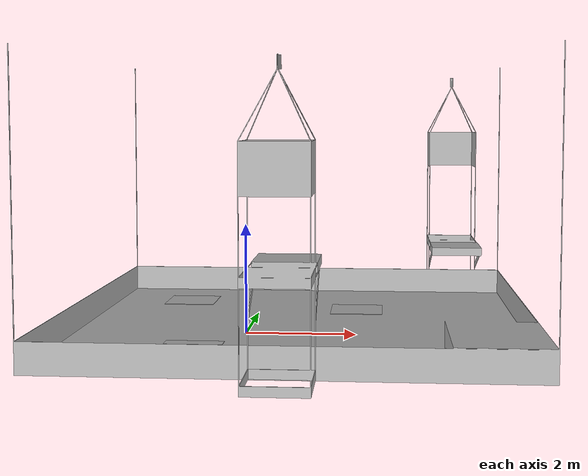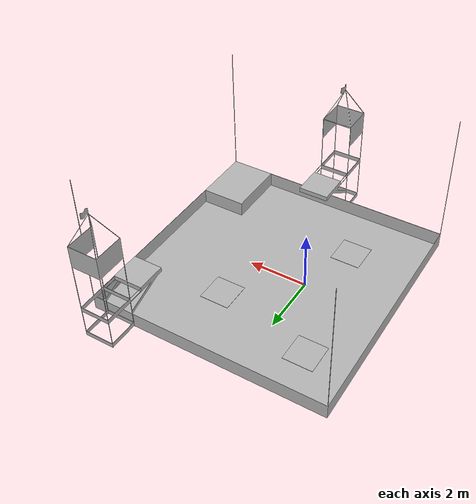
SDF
<?xml version='1.0'?>
<sdf version='1.6'>
  <model name='arena_spawn'>
    <static>1</static>
    <link name='link_0'>
      <pose>-3.0 -3.8 0.11 0 0 0</pose>
      <inertial>
      <pose>0 0 0 0 0 0</pose>

        <mass>15</mass>
        <inertia>
          <ixx>0</ixx>
          <ixy>0</ixy>
          <ixz>0</ixz>
          <iyy>0</iyy>
          <iyz>0</iyz>
          <izz>0</izz>
        </inertia>
      </inertial>
      <self_collide>1</self_collide>
      <enable_wind>0</enable_wind>
      <kinematic>0</kinematic>
      <visual name='visual'>
        <pose>0 0 0 0 0 0</pose>
        <geometry>
          <mesh>
            <uri>meshes/Arena.obj</uri>
            <scale>1 1 1</scale>
          </mesh>
        </geometry>
        <transparency>0</transparency>
        <cast_shadows>1</cast_shadows>
      </visual>
      <collision name='collision'>
        <laser_retro>0</laser_retro>
        <max_contacts>10</max_contacts>
        <pose>0 0 0 0 0 0</pose>
        <geometry>
          <mesh>
            <uri>meshes/Arena.obj</uri>
            <scale>1 1 1</scale>
          </mesh>
        </geometry>
        <surface>
          <friction>
            <ode>
              <mu>1</mu>
              <mu2>1</mu2>
              <fdir1>0 0 0</fdir1>
              <slip1>0</slip1>
              <slip2>0</slip2>
            </ode>
            <torsional>
              <coefficient>1</coefficient>
              <patch_radius>100</patch_radius>
              <surface_radius>100</surface_radius>
              <use_patch_radius>1</use_patch_radius>
              <ode>
                <slip>0</slip>
              </ode>
            </torsional>
          </friction>
          <bounce>
            <restitution_coefficient>0</restitution_coefficient>
            <threshold>1e+06</threshold>
          </bounce>
          <contact>
            <collide_without_contact>0</collide_without_contact>
            <collide_without_contact_bitmask>1</collide_without_contact_bitmask>
            <collide_bitmask>1</collide_bitmask>
            <ode>
              <soft_cfm>0</soft_cfm>
              <soft_erp>0.2</soft_erp>
              <kp>1e+13</kp>
              <kd>1</kd>
              <max_vel>0.01</max_vel>
              <min_depth>0</min_depth>
            </ode>
            <bullet>
              <split_impulse>1</split_impulse>
              <split_impulse_penetration_threshold>-0.01</split_impulse_penetration_threshold>
              <soft_cfm>0</soft_cfm>
              <soft_erp>0.2</soft_erp>
              <kp>1e+13</kp>
              <kd>1</kd>
            </bullet>
          </contact>
        </surface>
      </collision>
    </link>

    <!-- high base left-->
    <link name='link_4'>
      <pose>-3.0 -3.8 0.11 0 0 0</pose>
      <inertial>
      <pose>0 0 0 0 0 0</pose>

        <mass>1</mass>
        <inertia>
          <ixx>0.166667</ixx>
          <ixy>0</ixy>
          <ixz>0</ixz>
          <iyy>0.166667</iyy>
          <iyz>0</iyz>
          <izz>0.166667</izz>
        </inertia>
      </inertial>
      <self_collide>1</self_collide>
      <enable_wind>0</enable_wind>
      <kinematic>0</kinematic>
      <visual name='visual'>
        <pose>0 0 0 0 0 0</pose>
        <geometry>
          <mesh>
            <uri>meshes/high_base_left.obj</uri>
            <scale>1 1 1</scale>
          </mesh>
        </geometry>
        <transparency>0</transparency>
        <cast_shadows>1</cast_shadows>
      </visual>
      <collision name='collision'>
        <laser_retro>0</laser_retro>
        <max_contacts>10</max_contacts>
        <pose>0 0 0 0 0 0</pose>
        <geometry>
          <mesh>
            <uri>meshes/high_base_left.obj</uri>
            <scale>1 1 1</scale>
          </mesh>
        </geometry>
        <surface>
          <friction>
            <ode>
              <mu>1</mu>
              <mu2>1</mu2>
              <fdir1>0 0 0</fdir1>
              <slip1>0</slip1>
              <slip2>0</slip2>
            </ode>
            <torsional>
              <coefficient>1</coefficient>
              <patch_radius>100</patch_radius>
              <surface_radius>100</surface_radius>
              <use_patch_radius>1</use_patch_radius>
              <ode>
                <slip>0</slip>
              </ode>
            </torsional>
          </friction>
          <bounce>
            <restitution_coefficient>0</restitution_coefficient>
            <threshold>1e+06</threshold>
          </bounce>
          <contact>
            <collide_without_contact>0</collide_without_contact>
            <collide_without_contact_bitmask>1</collide_without_contact_bitmask>
            <collide_bitmask>1</collide_bitmask>
            <ode>
              <soft_cfm>0</soft_cfm>
              <soft_erp>0.2</soft_erp>
              <kp>1e+13</kp>
              <kd>1</kd>
              <max_vel>0.01</max_vel>
              <min_depth>0</min_depth>
            </ode>
            <bullet>
              <split_impulse>1</split_impulse>
              <split_impulse_penetration_threshold>-0.01</split_impulse_penetration_threshold>
              <soft_cfm>0</soft_cfm>
              <soft_erp>0.2</soft_erp>
              <kp>1e+13</kp>
              <kd>1</kd>
            </bullet>
          </contact>
        </surface>
      </collision>
    </link>

    <!-- high base right -->
    <link name='link_5'>
      <pose>-3.0 -3.8 0.11 0 0 0</pose>
      <inertial>
      <pose>0 0 0 0 0 0</pose>
        <mass>1</mass>
        <inertia>
          <ixx>0.166667</ixx>
          <ixy>0</ixy>
          <ixz>0</ixz>
          <iyy>0.166667</iyy>
          <iyz>0</iyz>
          <izz>0.166667</izz>
        </inertia>
      </inertial>
      <self_collide>1</self_collide>
      <enable_wind>0</enable_wind>
      <kinematic>0</kinematic>
      <visual name='visual'>
        <pose>0 0 0 0 0 0</pose>
        <geometry>
          <mesh>
            <uri>meshes/high_base_right.obj</uri>
            <scale>1 1 1</scale>
          </mesh>
        </geometry>
        <transparency>0</transparency>
        <cast_shadows>1</cast_shadows>
      </visual>
      <collision name='collision'>
        <laser_retro>0</laser_retro>
        <max_contacts>10</max_contacts>
        <pose>0 0 0 0 0 0</pose>
        <geometry>
          <mesh>
            <uri>meshes/high_base_right.obj</uri>
            <scale>1 1 1</scale>
          </mesh>
        </geometry>
        <surface>
          <friction>
            <ode>
              <mu>1</mu>
              <mu2>1</mu2>
              <fdir1>0 0 0</fdir1>
              <slip1>0</slip1>
              <slip2>0</slip2>
            </ode>
            <torsional>
              <coefficient>1</coefficient>
              <patch_radius>100</patch_radius>
              <surface_radius>100</surface_radius>
              <use_patch_radius>1</use_patch_radius>
              <ode>
                <slip>0</slip>
              </ode>
            </torsional>
          </friction>
          <bounce>
            <restitution_coefficient>0</restitution_coefficient>
            <threshold>1e+06</threshold>
          </bounce>
          <contact>
            <collide_without_contact>0</collide_without_contact>
            <collide_without_contact_bitmask>1</collide_without_contact_bitmask>
            <collide_bitmask>1</collide_bitmask>
            <ode>
              <soft_cfm>0</soft_cfm>
              <soft_erp>0.2</soft_erp>
              <kp>1e+13</kp>
              <kd>1</kd>
              <max_vel>0.01</max_vel>
              <min_depth>0</min_depth>
            </ode>
            <bullet>
              <split_impulse>1</split_impulse>
              <split_impulse_penetration_threshold>-0.01</split_impulse_penetration_threshold>
              <soft_cfm>0</soft_cfm>
              <soft_erp>0.2</soft_erp>
              <kp>1e+13</kp>
              <kd>1</kd>
            </bullet>
          </contact>
        </surface>
      </collision>
    </link>

      <link name='link_1_1'>
      <pose>1.9799646544073715 1.7200378560719956 0.15450701799208361 -1.679313178871025e-09 -1.6033867302421283e-09 -2.8021040695938825e-05</pose>
        <visual name='visual'>
          <geometry>
            <mesh>
              <uri>../land_base/meshes/land_base_1.obj</uri>
            </mesh>
          </geometry>
        </visual>
        <collision name='collision'>
          <geometry>
            <mesh>
              <uri>../land_base/meshes/land_base_1.obj</uri>
            </mesh>
          </geometry>
        </collision>
        <pose>0 0 0 0 0 0</pose>
        <inertial>
          <pose>0 0 0 0 0 0</pose>
          <mass>1</mass>
          <inertia>
            <ixx>1</ixx>
            <ixy>0</ixy>
            <ixz>0</ixz>
            <iyy>1</iyy>
            <iyz>0</iyz>
            <izz>1</izz>
          </inertia>
        </inertial>
        <enable_wind>false</enable_wind>
      </link>

      <link name='link_1_2'>
      <pose>-0.68475347400873476 -1.9136077451136353 0.15198696239799503 3.6915084775001155e-09 8.5719914300909128e-09 -2.8021005563360616e-05</pose>
        <visual name='visual'>
          <geometry>
            <mesh>
              <uri>../land_base/meshes/land_base_1.obj</uri>
            </mesh>
          </geometry>
        </visual>
        <collision name='collision'>
          <geometry>
            <mesh>
              <uri>../land_base/meshes/land_base_1.obj</uri>
            </mesh>
          </geometry>
        </collision>
      </link>

      <link name='link_1_3'>
      <pose>-1.4298343131256812 2.561037340000281 0.15171798343054224 -3.3132003413010078e-09 1.5293870335643684e-09 -2.8021002123818114e-05</pose>
        <visual name='visual'>
          <geometry>
            <mesh>
              <uri>../land_base/meshes/land_base_1.obj</uri>
            </mesh>
          </geometry>
        </visual>
        <collision name='collision'>
          <geometry>
            <mesh>
              <uri>../land_base/meshes/land_base_1.obj</uri>
            </mesh>
          </geometry>
        </collision>
      </link>
      <static>false</static>
      <self_collide>false</self_collide>
    </model>
</sdf>
